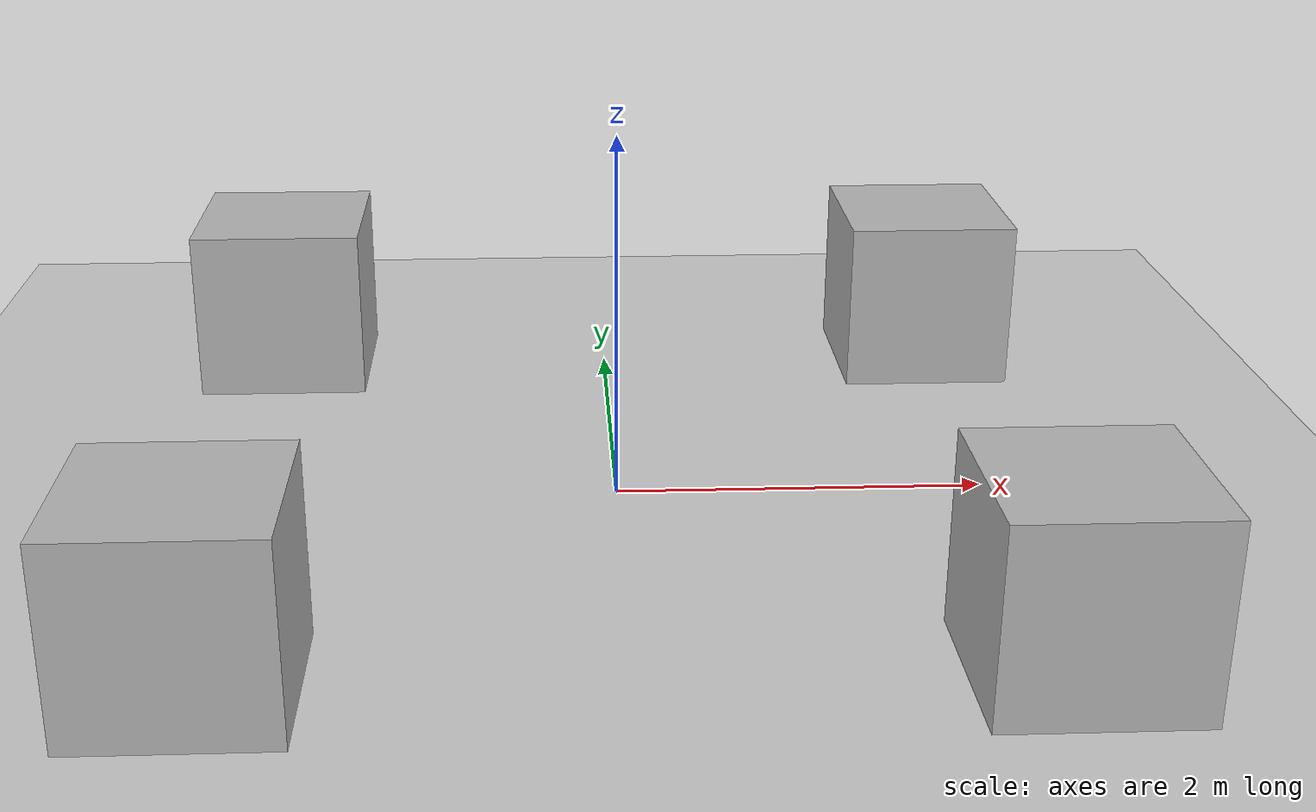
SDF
<?xml version="1.0"?>
<sdf version="1.8">
    <world name="default">
        <physics name="1ms" type="ignored">
            <max_step_size>0.001</max_step_size>
            <real_time_factor>1.0</real_time_factor>
        </physics>
        <plugin filename="ignition-gazebo-physics-system" name="ignition::gazebo::systems::Physics"></plugin>
        <plugin filename="ignition-gazebo-user-commands-system" name="ignition::gazebo::systems::UserCommands"></plugin>
        <plugin filename="ignition-gazebo-scene-broadcaster-system" name="ignition::gazebo::systems::SceneBroadcaster"></plugin>
        <plugin filename="ignition-gazebo-contact-system" name="ignition::gazebo::systems::Contact"></plugin>
        <light type="directional" name="sun">
            <cast_shadows>true</cast_shadows>
            <pose>0 0 10 0 0 0</pose>
            <diffuse>0.8 0.8 0.8 1</diffuse>
            <specular>0.2 0.2 0.2 1</specular>
            <attenuation>
                <range>1000</range>
                <constant>0.9</constant>
                <linear>0.01</linear>
                <quadratic>0.001</quadratic>
            </attenuation>
            <direction>-0.5 0.1 -0.9</direction>
        </light>

        <model name="ground_plane">
            <static>true</static>
            <link name="link">
                <collision name="collision">
                    <geometry>
                        <plane>
                            <normal>0 0 1</normal>
                            <size>100 100</size>
                        </plane>
                    </geometry>
                </collision>
                <visual name="visual">
                    <geometry>
                        <plane>
                            <normal>0 0 1</normal>
                            <size>100 100</size>
                        </plane>
                    </geometry>
                    <material>
                        <ambient>0.8 0.8 0.8 1</ambient>
                        <diffuse>0.8 0.8 0.8 1</diffuse>
                        <specular>0.8 0.8 0.8 1</specular>
                    </material>
                </visual>
            </link>
        </model>

        <model name='box1'>
            <pose>2 2 0.5 0 -0 0</pose>
            <link name='box_link'>
                <inertial>
                    <inertia>
                        <ixx>0.16666</ixx>
                        <ixy>0</ixy>
                        <ixz>0</ixz>
                        <iyy>0.16666</iyy>
                        <iyz>0</iyz>
                        <izz>0.16666</izz>
                    </inertia>
                    <mass>100</mass>
                </inertial>
                <collision name='box_collision'>
                    <geometry>
                        <box>
                            <size>1 1 1</size>
                        </box>
                    </geometry>
                    <surface>
                        <friction>
                            <ode />
                        </friction>
                        <bounce />
                        <contact />
                    </surface>
                </collision>
                <visual name='box_visual'>
                    <geometry>
                        <box>
                            <size>1 1 1</size>
                        </box>
                    </geometry>
                </visual>
            </link>
        </model>

        <model name='box2'>
            <pose>2 -2 0.5 0 -0 0</pose>
            <link name='box_link'>
                <inertial>
                    <inertia>
                        <ixx>0.16666</ixx>
                        <ixy>0</ixy>
                        <ixz>0</ixz>
                        <iyy>0.16666</iyy>
                        <iyz>0</iyz>
                        <izz>0.16666</izz>
                    </inertia>
                    <mass>100</mass>
                </inertial>
                <collision name='box_collision'>
                    <geometry>
                        <box>
                            <size>1 1 1</size>
                        </box>
                    </geometry>
                    <surface>
                        <friction>
                            <ode />
                        </friction>
                        <bounce />
                        <contact />
                    </surface>
                </collision>
                <visual name='box_visual'>
                    <geometry>
                        <box>
                            <size>1 1 1</size>
                        </box>
                    </geometry>
                </visual>
            </link>
        </model>

        <model name='box3'>
            <pose>-2 -2 0.5 0 -0 0</pose>
            <link name='box_link'>
                <inertial>
                    <inertia>
                        <ixx>0.16666</ixx>
                        <ixy>0</ixy>
                        <ixz>0</ixz>
                        <iyy>0.16666</iyy>
                        <iyz>0</iyz>
                        <izz>0.16666</izz>
                    </inertia>
                    <mass>100</mass>
                </inertial>
                <collision name='box_collision'>
                    <geometry>
                        <box>
                            <size>1 1 1</size>
                        </box>
                    </geometry>
                    <surface>
                        <friction>
                            <ode />
                        </friction>
                        <bounce />
                        <contact />
                    </surface>
                </collision>
                <visual name='box_visual'>
                    <geometry>
                        <box>
                            <size>1 1 1</size>
                        </box>
                    </geometry>
                </visual>
            </link>
        </model>

        <model name='box4'>
            <pose>-2 2 0.5 0 -0 0</pose>
            <link name='box_link'>
                <inertial>
                    <inertia>
                        <ixx>0.16666</ixx>
                        <ixy>0</ixy>
                        <ixz>0</ixz>
                        <iyy>0.16666</iyy>
                        <iyz>0</iyz>
                        <izz>0.16666</izz>
                    </inertia>
                    <mass>100</mass>
                </inertial>
                <collision name='box_collision'>
                    <geometry>
                        <box>
                            <size>1 1 1</size>
                        </box>
                    </geometry>
                    <surface>
                        <friction>
                            <ode />
                        </friction>
                        <bounce />
                        <contact />
                    </surface>
                </collision>
                <visual name='box_visual'>
                    <geometry>
                        <box>
                            <size>1 1 1</size>
                        </box>
                    </geometry>
                </visual>
            </link>
        </model>
    </world>
</sdf>
